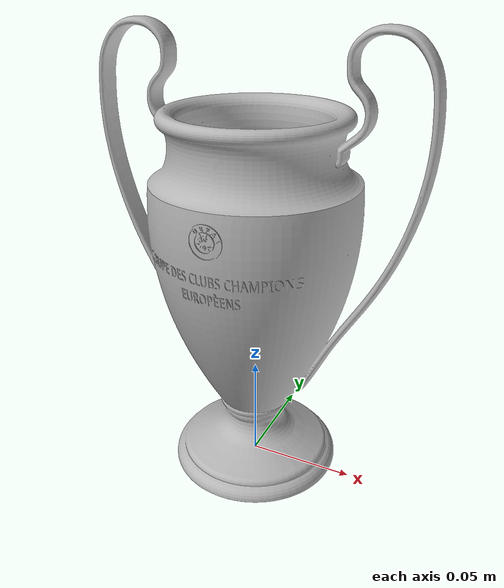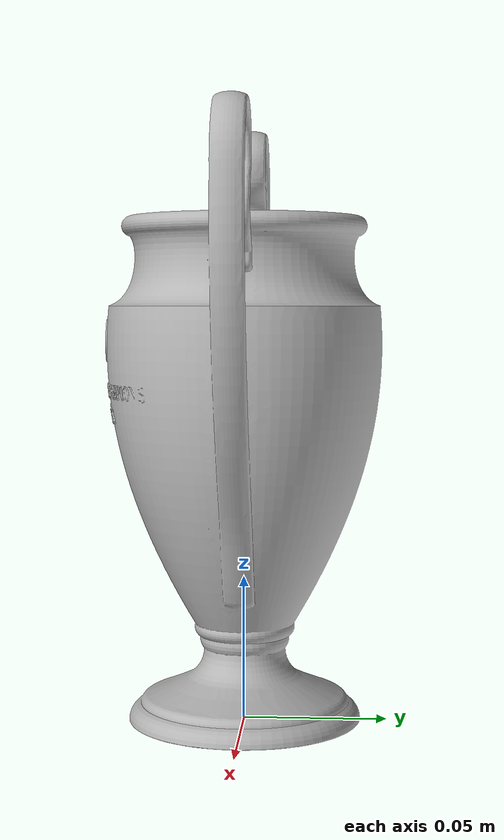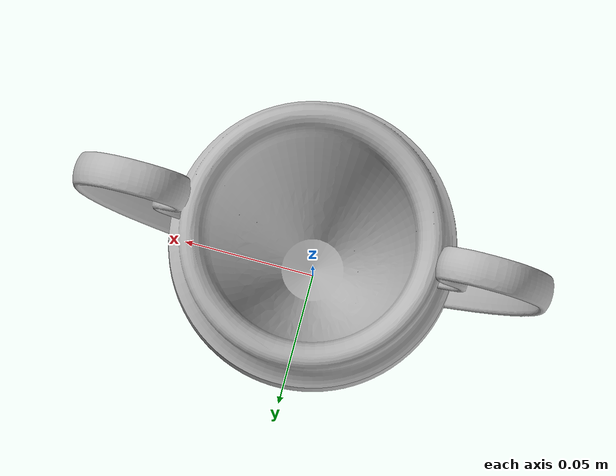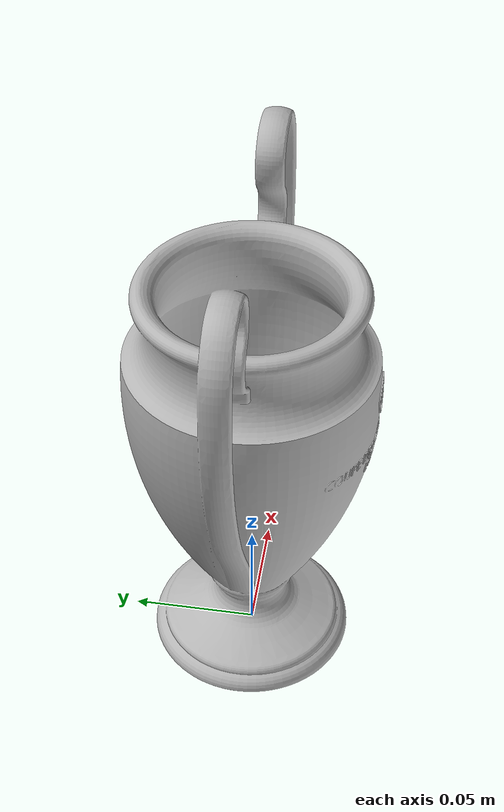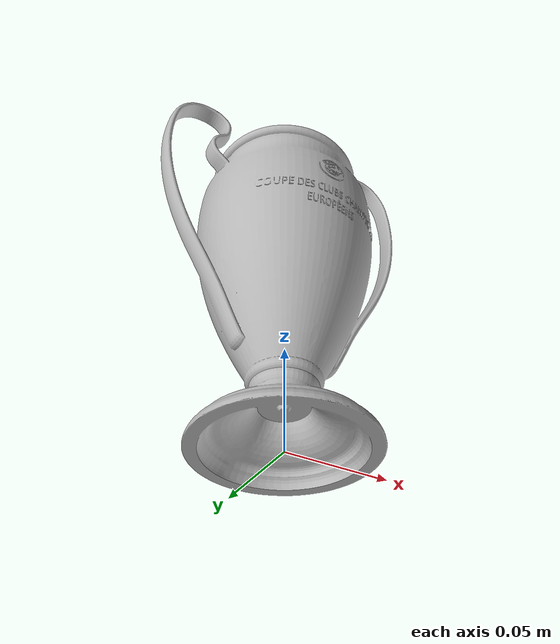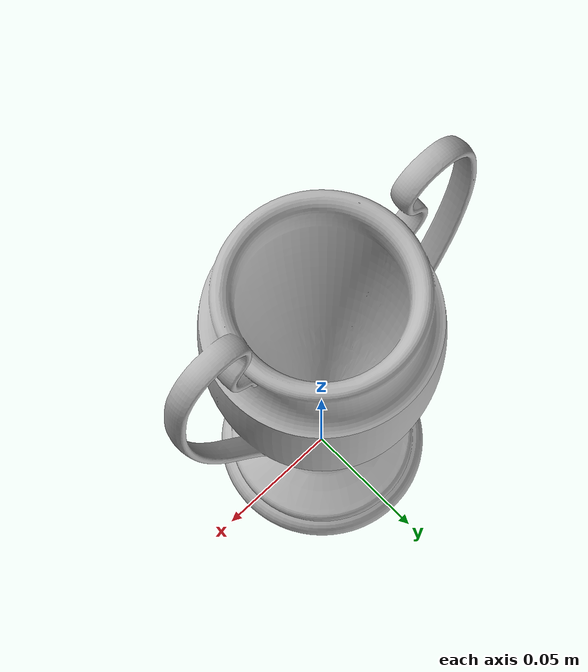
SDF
<?xml version="1.0"?>
<sdf version="1.9">
  <model name="trofeo">
    <pose>0 0 0 0 0 0</pose>

    <link name="trofeo_link">
      <inertial>
        <!-- Trofeo mediano: ~250 g, centro de masas hacia la base por estabilidad -->
        <mass>0.25</mass>
        <inertia>
          <ixx>3.5e-4</ixx>
          <iyy>3.5e-4</iyy>
          <izz>2.5e-4</izz>
          <ixy>0</ixy>
          <ixz>0</ixz>
          <iyz>0</iyz>
        </inertia>
        <pose>0 0 0.08 0 0 0</pose>
      </inertial>

      <!-- Colision: cilindro simplificado para que DART (Gazebo) lo soporte
           y el gripper lo pueda atrapar de forma estable.
           Ajusta radius/length a la silueta real de tu trofeo. -->
      <collision name="trofeo_collision">
        <pose>0 0 0.03 0 0 0</pose>
        <geometry>
          <cylinder>
            <radius>0.02</radius>
            <length>0.06</length>
          </cylinder>
        </geometry>
        <surface>
          <friction>
            <ode>
              <mu>1.2</mu>
              <mu2>1.2</mu2>
            </ode>
          </friction>
          <contact>
            <ode>
              <kp>1e6</kp>
              <kd>100</kd>
            </ode>
          </contact>
        </surface>
      </collision>

      <!-- Visual: la malla del trofeo. Ajusta scale segun las unidades del STL.
           Si el STL viene en milimetros, scale 0.001 0.001 0.001.
           Si viene en metros, scale 1 1 1. -->
      <visual name="trofeo_visual">
        <pose>0 0 0 0 0 0</pose>
        <geometry>
          <mesh>
            <uri>package://robot_description/meshes/trofeo/trofeo.stl</uri>
            <scale>0.001 0.001 0.001</scale>
          </mesh>
        </geometry>
      </visual>
    </link>
  </model>
</sdf>
